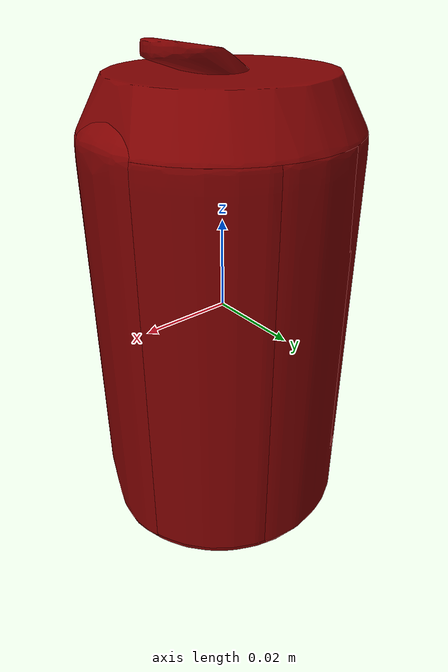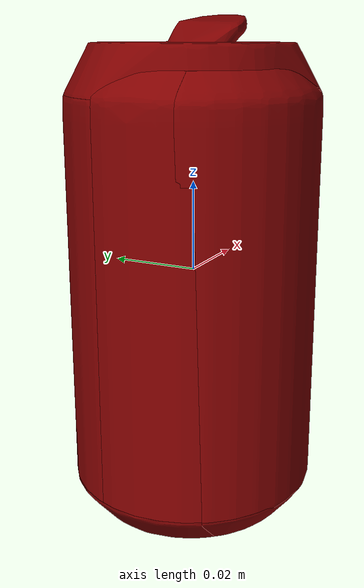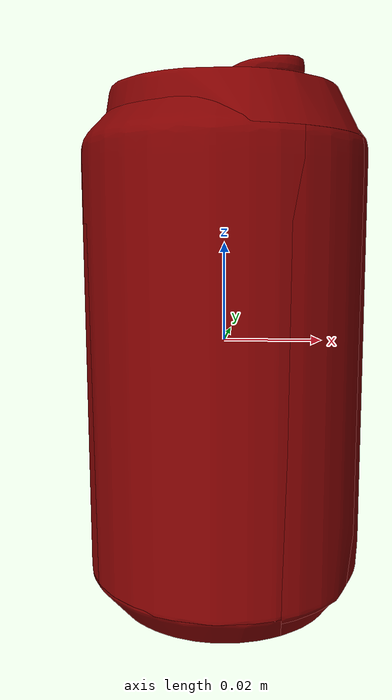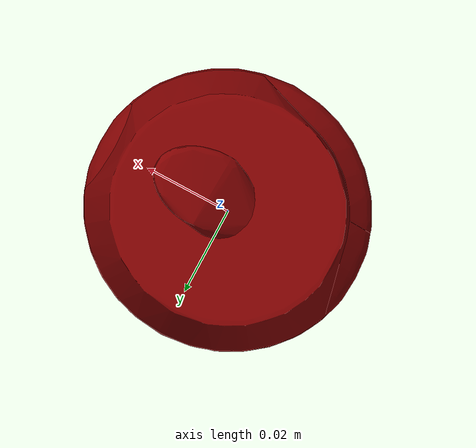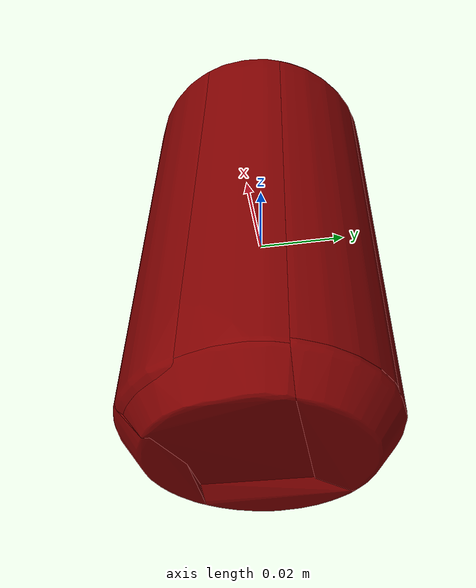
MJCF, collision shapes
<mujoco model="can_22">
  <asset>
    <mesh file="visual/model_normalized_0.obj" name="model_normalized_0_vis" scale="0.11 0.11 0.11" refquat="-0.7071067811865476 0.0 0.0 -0.7071067811865475"/>
    <texture type="2d" name="image0" file="visual/image0.png"/>
    <material name="01_-_Default.016" texture="image0" specular="0.5" shininess="0.15999998099999999"/>
    <mesh file="collision/collision_mesh_collision_0.obj" name="can_collision_mesh_0" scale="0.11 0.11 0.11" refquat="-0.7071067811865476 0.0 0.0 -0.7071067811865475"/>
    <mesh file="collision/collision_mesh_collision_1.obj" name="can_collision_mesh_1" scale="0.11 0.11 0.11" refquat="-0.7071067811865476 0.0 0.0 -0.7071067811865475"/>
    <mesh file="collision/collision_mesh_collision_2.obj" name="can_collision_mesh_2" scale="0.11 0.11 0.11" refquat="-0.7071067811865476 0.0 0.0 -0.7071067811865475"/>
    <mesh file="collision/collision_mesh_collision_3.obj" name="can_collision_mesh_3" scale="0.11 0.11 0.11" refquat="-0.7071067811865476 0.0 0.0 -0.7071067811865475"/>
    <mesh file="collision/collision_mesh_collision_4.obj" name="can_collision_mesh_4" scale="0.11 0.11 0.11" refquat="-0.7071067811865476 0.0 0.0 -0.7071067811865475"/>
    <mesh file="collision/collision_mesh_collision_5.obj" name="can_collision_mesh_5" scale="0.11 0.11 0.11" refquat="-0.7071067811865476 0.0 0.0 -0.7071067811865475"/>
    <mesh file="collision/collision_mesh_collision_6.obj" name="can_collision_mesh_6" scale="0.11 0.11 0.11" refquat="-0.7071067811865476 0.0 0.0 -0.7071067811865475"/>
    <mesh file="collision/collision_mesh_collision_7.obj" name="can_collision_mesh_7" scale="0.11 0.11 0.11" refquat="-0.7071067811865476 0.0 0.0 -0.7071067811865475"/>
    <mesh file="collision/collision_mesh_collision_8.obj" name="can_collision_mesh_8" scale="0.11 0.11 0.11" refquat="-0.7071067811865476 0.0 0.0 -0.7071067811865475"/>
    <mesh file="collision/collision_mesh_collision_9.obj" name="can_collision_mesh_9" scale="0.11 0.11 0.11" refquat="-0.7071067811865476 0.0 0.0 -0.7071067811865475"/>
    <mesh file="collision/collision_mesh_collision_10.obj" name="can_collision_mesh_10" scale="0.11 0.11 0.11" refquat="-0.7071067811865476 0.0 0.0 -0.7071067811865475"/>
    <mesh file="collision/collision_mesh_collision_11.obj" name="can_collision_mesh_11" scale="0.11 0.11 0.11" refquat="-0.7071067811865476 0.0 0.0 -0.7071067811865475"/>
    <mesh file="collision/collision_mesh_collision_12.obj" name="can_collision_mesh_12" scale="0.11 0.11 0.11" refquat="-0.7071067811865476 0.0 0.0 -0.7071067811865475"/>
    <mesh file="collision/collision_mesh_collision_13.obj" name="can_collision_mesh_13" scale="0.11 0.11 0.11" refquat="-0.7071067811865476 0.0 0.0 -0.7071067811865475"/>
    <mesh file="collision/collision_mesh_collision_14.obj" name="can_collision_mesh_14" scale="0.11 0.11 0.11" refquat="-0.7071067811865476 0.0 0.0 -0.7071067811865475"/>
    <mesh file="collision/collision_mesh_collision_15.obj" name="can_collision_mesh_15" scale="0.11 0.11 0.11" refquat="-0.7071067811865476 0.0 0.0 -0.7071067811865475"/>
  </asset>
  <default>
    <default class="region">
      <geom group="1" conaffinity="0" contype="0" rgba="0 1 0 0"/>
    </default>
    <default class="collision">
      <geom group="0" rgba="0.5 0 0 0.5" density="1000.0"/>
    </default>
  </default>
  <worldbody>
    <body>
      <body name="object">
        <geom solimp="0.998 0.998 0.001" solref="0.001 1" density="100" friction="0.95 0.3 0.1" type="mesh" mesh="model_normalized_0_vis" conaffinity="0" contype="0" group="1" material="01_-_Default.016"/>
        <geom class="region" name="reg_bbox" type="box" pos="0.0 0.0 -6.068094999999885e-05" size="0.028600156199999997 0.027630490799999997 0.055451323950000006"/>
        <geom mesh="can_collision_mesh_0" type="mesh" class="collision"/>
        <geom mesh="can_collision_mesh_1" type="mesh" class="collision"/>
        <geom mesh="can_collision_mesh_2" type="mesh" class="collision"/>
        <geom mesh="can_collision_mesh_3" type="mesh" class="collision"/>
        <geom mesh="can_collision_mesh_4" type="mesh" class="collision"/>
        <geom mesh="can_collision_mesh_5" type="mesh" class="collision"/>
        <geom mesh="can_collision_mesh_6" type="mesh" class="collision"/>
        <geom mesh="can_collision_mesh_7" type="mesh" class="collision"/>
        <geom mesh="can_collision_mesh_8" type="mesh" class="collision"/>
        <geom mesh="can_collision_mesh_9" type="mesh" class="collision"/>
        <geom mesh="can_collision_mesh_10" type="mesh" class="collision"/>
        <geom mesh="can_collision_mesh_11" type="mesh" class="collision"/>
        <geom mesh="can_collision_mesh_12" type="mesh" class="collision"/>
        <geom mesh="can_collision_mesh_13" type="mesh" class="collision"/>
        <geom mesh="can_collision_mesh_14" type="mesh" class="collision"/>
        <geom mesh="can_collision_mesh_15" type="mesh" class="collision"/>
      </body>
    </body>
  </worldbody>
</mujoco>
